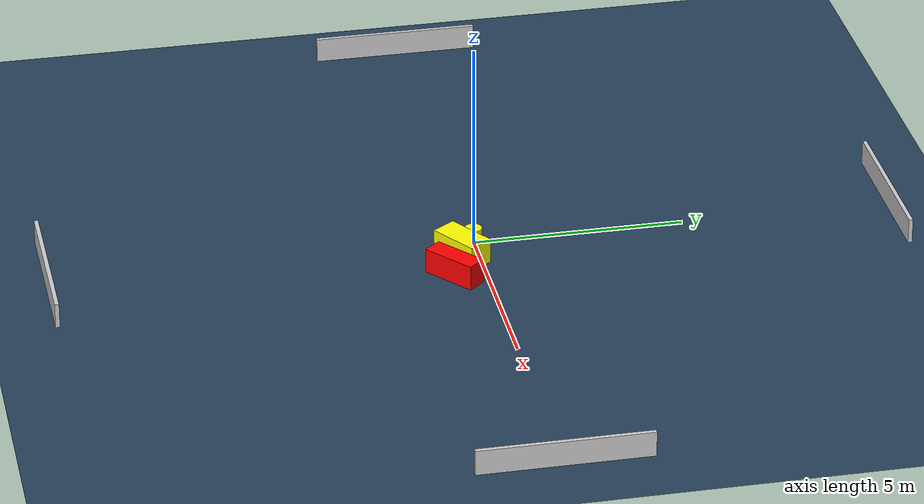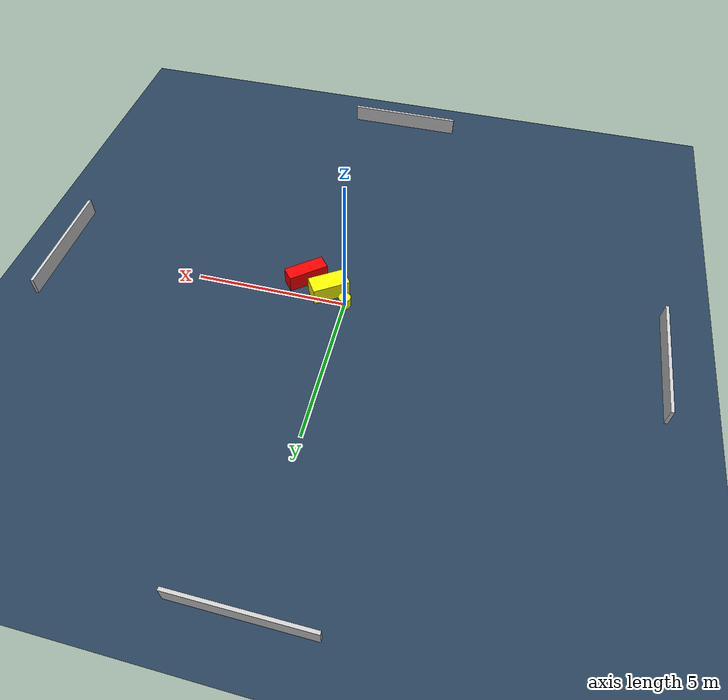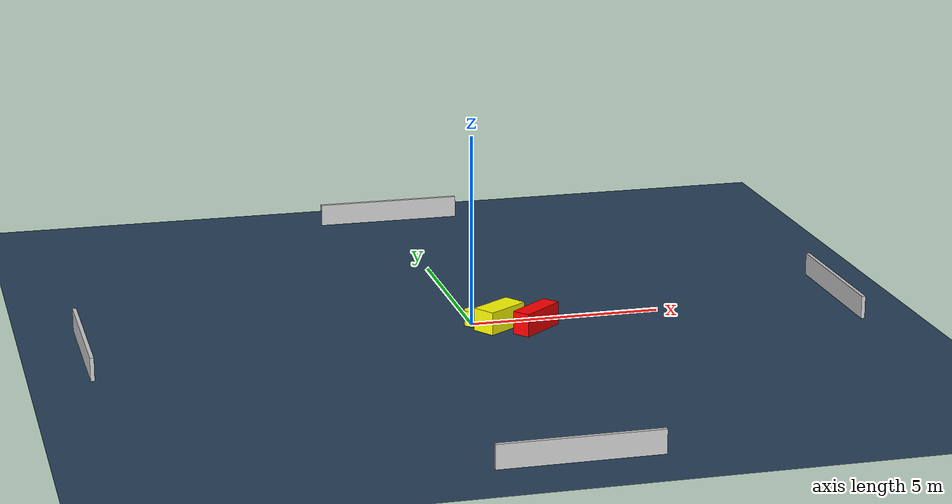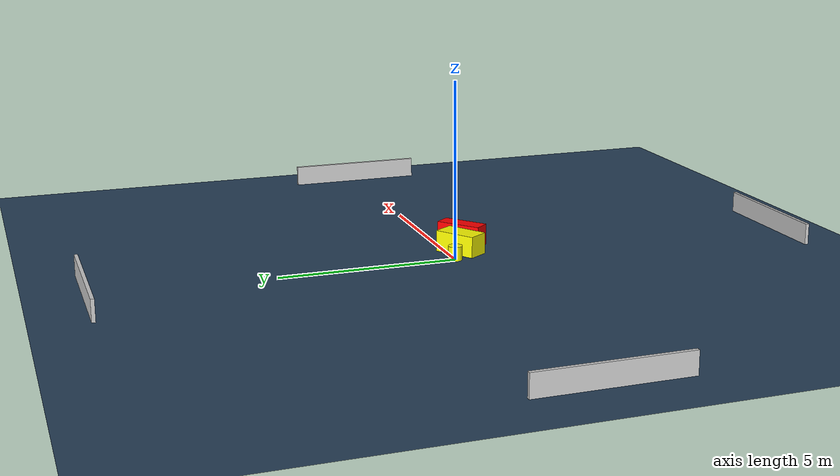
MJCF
<?xml version="1.0" ?>
<mujoco model="generated_environment">
  <option timestep="0.01" integrator="RK4" cone="elliptic"/>
  <default>
    <geom density="1"/>
  </default>
  <asset>
    <texture builtin="gradient" height="3072" name="skybox" rgb1="0.3 0.5 0.7" rgb2="0 0 0" type="skybox" width="512"/>
    <texture builtin="checker" height="300" name="groundplane" rgb1="0.2 0.3 0.4" rgb2="0.1 0.2 0.3" type="2d" width="300"/>
    <material name="groundplane" reflectance="0.2" texrepeat="5 5" texture="groundplane"/>
  </asset>
  <worldbody>
    <light dir="0 0 -1" directional="true" pos="0 0 1.5"/>
    <geom condim="3" friction="0.5 0.005 0.001" material="groundplane" name="floor" pos="0 0 0" size="0 0 0.05" type="plane"/>
    <body name="walls">
      <geom name="wall_1" condim="4" pos="-10.0 0.0 0.3" rgba="0.800000011920929 0.800000011920929 0.800000011920929 1.0" size="0.05 2.0 0.3" type="box"/>
      <geom name="wall_2" condim="4" pos="10.0 0.0 0.3" rgba="0.800000011920929 0.800000011920929 0.800000011920929 1.0" size="0.05 2.0 0.3" type="box"/>
      <geom name="wall_3" condim="4" pos="0.0 -10.0 0.3" rgba="0.800000011920929 0.800000011920929 0.800000011920929 1.0" size="2.0 0.05 0.3" type="box"/>
      <geom name="wall_4" condim="4" pos="0.0 10.0 0.3" rgba="0.800000011920929 0.800000011920929 0.800000011920929 1.0" size="2.0 0.05 0.3" type="box"/>
    </body>
    <body name="robot">
      <joint name="joint_x" type="slide" pos="0 0 0" axis="1 0 0"/>
      <joint name="joint_y" type="slide" pos="0 0 0" axis="0 1 0"/>
      <geom name="robot" type="cylinder" pos="0.0 0.0 0.2" size="0.2 0.2 0.0" mass="5.0" friction="1.0 0.005 0.0001" condim="4" rgba="1.0 1.0 0.0 1.0"/>
    </body>
    <body name="obstacle_1_movable">
      <geom name="obstacle_1_movable" condim="4" pos="0.6335478015289049 -0.39489831446279444 0.3" euler="0 0 123.7361520873025" friction="0.0 0.005 0.001" rgba="1.0 1.0 0.0 1.0" size="0.31325501035167225 0.6164402735638996 0.3" type="box" mass="0.1"/>
      <joint type="free"/>
    </body>
    <body name="obstacle_2_static">
      <geom name="obstacle_2_static" condim="4" pos="1.511589856837311 -0.7515526111482939 0.3" euler="0 0 219.28514886172508" friction="0.0 0.005 0.001" rgba="1.0 0.0 0.0 1.0" size="0.6690344393278413 0.2387532862075315 0.3" type="box"/>
    </body>
  </worldbody>
  <actuator>
    <motor name="actuator_x" joint="joint_x" gear="1" ctrlrange="-1 1"/>
    <motor name="actuator_y" joint="joint_y" gear="1" ctrlrange="-1 1"/>
  </actuator>
</mujoco>
